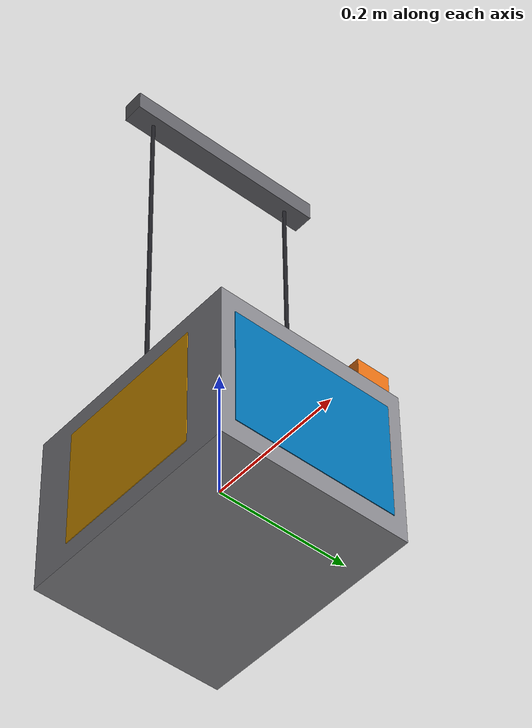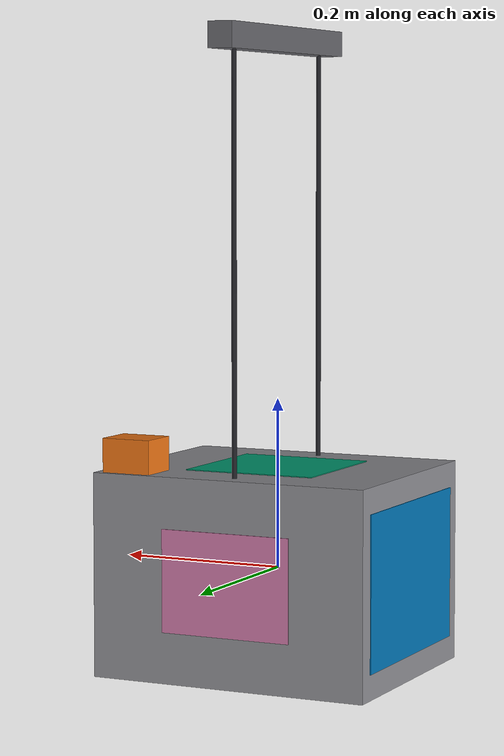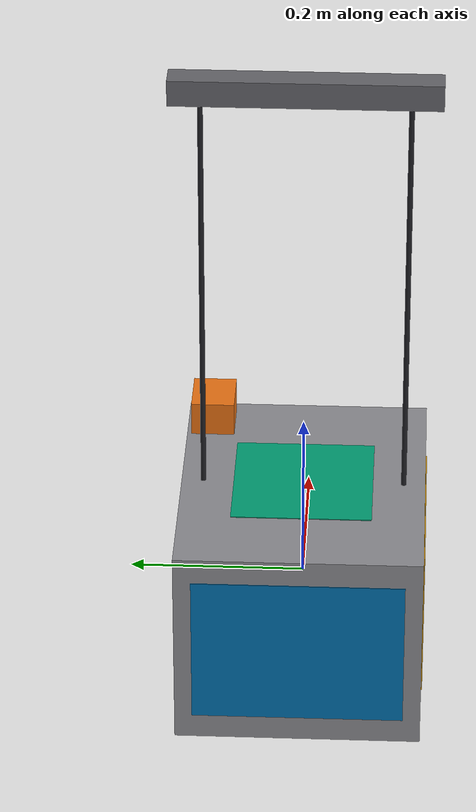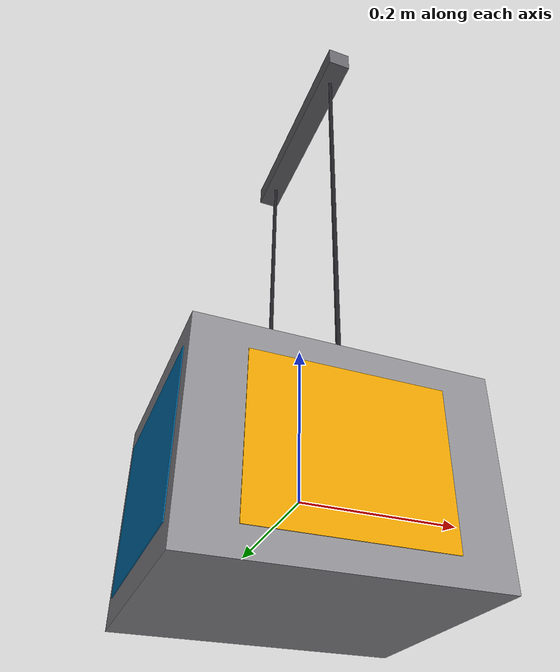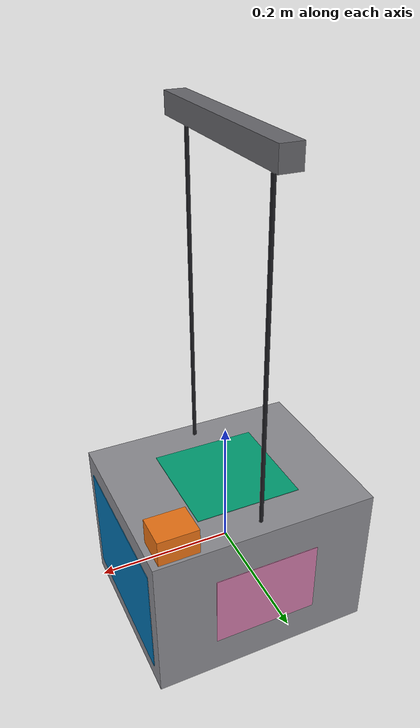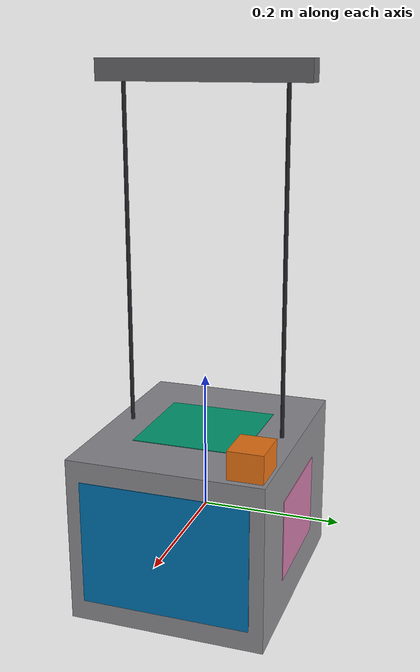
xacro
<?xml version="1.0"?>
<robot name="calibration_target_v1" xmlns:xacro="http://ros.org/wiki/xacro">

  <!-- ===== 基本参数 (V5) ===== -->
  <xacro:property name="body_sx" value="0.34"/>  <!-- X: 前后 -->
  <xacro:property name="body_sy" value="0.28"/>  <!-- Y: 左右 -->
  <xacro:property name="body_sz" value="0.24"/>  <!-- Z: 上下 -->
  <xacro:property name="panel_gap" value="0.001"/>

  <!-- 面板外表面偏移 (V5: PANEL_GAP 替代 panel_thick/2) -->
  <xacro:property name="front_x" value="${body_sx/2 + panel_gap}"/>
  <xacro:property name="back_x"  value="${-body_sx/2 - panel_gap}"/>
  <xacro:property name="left_y"  value="${body_sy/2 + panel_gap}"/>
  <xacro:property name="right_y" value="${-body_sy/2 - panel_gap}"/>
  <xacro:property name="top_z"   value="${body_sz/2 + panel_gap}"/>

  <!-- 吊具参数 (V5) -->
  <xacro:property name="spreader_z" value="0.62"/>
  <xacro:property name="hanger_y" value="0.115"/>
  <xacro:property name="cable_radius" value="0.003"/>
  <xacro:property name="cable_bottom_z" value="0.12"/>
  <xacro:property name="cable_top_z" value="0.605"/>
  <xacro:property name="cable_len" value="${cable_top_z - cable_bottom_z}"/>
  <xacro:property name="cable_mid_z" value="${(cable_top_z + cable_bottom_z) / 2}"/>

  <!-- ===== 材质 ===== -->
  <material name="body_mat_gray">
    <color rgba="0.55 0.55 0.57 1"/>
  </material>
  <material name="block_mat_orange">
    <color rgba="0.92 0.45 0.08 1"/>
  </material>
  <material name="cable_black">
    <color rgba="0.12 0.12 0.14 1"/>
  </material>
  <material name="bar_gray">
    <color rgba="0.40 0.40 0.42 1"/>
  </material>

  <!-- object_frame — 工件坐标系 root (供 object_pose_tf_v31 发布) -->
  <link name="object_frame"/>

  <!-- calibration_target_frame — 目标几何中心 (所有面板的父 frame) -->
  <link name="calibration_target_frame"/>

  <joint name="object_to_calibration_target" type="fixed">
    <parent link="object_frame"/>
    <child link="calibration_target_frame"/>
    <origin xyz="0 0 0" rpy="0 0 0"/>
  </joint>

  <!-- 主体 0.30×0.22×0.18m                                         -->
  <link name="main_body">
    <inertial>
      <mass value="3.0"/>
      <inertia ixx="0.02" ixy="0" ixz="0" iyy="0.018" iyz="0" izz="0.025"/>
    </inertial>
    <visual name="body_vis">
      <origin xyz="0 0 0" rpy="0 0 0"/>
      <geometry><box size="${body_sx} ${body_sy} ${body_sz}"/></geometry>
      <material name="body_mat_gray"/>
    </visual>
    <collision name="body_col">
      <origin xyz="0 0 0" rpy="0 0 0"/>
      <geometry><box size="${body_sx} ${body_sy} ${body_sz}"/></geometry>
    </collision>
  </link>

  <joint name="ct_to_body" type="fixed">
    <parent link="calibration_target_frame"/>
    <child link="main_body"/>
  </joint>

  <!-- 顶部偏置块 (非对称特征)                                      -->
  <xacro:property name="block_sx" value="0.06"/>  <!-- V5: 缩小 -->
  <xacro:property name="block_sy" value="0.05"/>
  <xacro:property name="block_sz" value="0.04"/>
  <xacro:property name="block_off_x" value="0.13"/>
  <xacro:property name="block_off_y" value="0.11"/>

  <link name="top_offset_block">
    <inertial>
      <mass value="0.3"/>
      <inertia ixx="0.0002" ixy="0" ixz="0" iyy="0.00015" iyz="0" izz="0.0002"/>
    </inertial>
    <visual name="block_vis">
      <origin xyz="0 0 0" rpy="0 0 0"/>
      <geometry><box size="${block_sx} ${block_sy} ${block_sz}"/></geometry>
      <material name="block_mat_orange"/>
    </visual>
  </link>

  <joint name="ct_to_block" type="fixed">
    <parent link="calibration_target_frame"/>
    <child link="top_offset_block"/>
    <origin xyz="${block_off_x} ${block_off_y} ${body_sz/2 + block_sz/2}" rpy="0 0 0"/>
  </joint>

  <!-- Front panel: ChArUco 8×6, Markers 100–123                   -->
  <!-- Box: thickness(X) × 0.24(Y) × 0.18(Z), 贴 +X 面              -->
  <link name="front_panel">
    <inertial>
      <mass value="0.05"/>
      <inertia ixx="0.00015" ixy="0" ixz="0" iyy="0.0003" iyz="0" izz="0.0002"/>
    </inertial>
    <visual name="front_panel_vis">
      <origin xyz="0 0 0" rpy="0 0 0"/>
      <geometry><box size="${panel_gap} 0.24 0.18"/></geometry>
    </visual>
  </link>

  <joint name="ct_to_front_panel" type="fixed">
    <parent link="calibration_target_frame"/>
    <child link="front_panel"/>
    <origin xyz="${front_x} 0 0" rpy="0 0 0"/>
  </joint>

  <link name="calibration_target_front_frame"/>
  <joint name="front_panel_to_frame" type="fixed">
    <parent link="front_panel"/>
    <child link="calibration_target_front_frame"/>
  </joint>

  <!-- Left panel: ChArUco 6×5, Markers 200–214                    -->
  <!-- Box: 0.16(X) × thickness(Y) × 0.12(Z), 贴 +Y 面              -->
  <link name="left_panel">
    <inertial>
      <mass value="0.03"/>
      <inertia ixx="0.0001" ixy="0" ixz="0" iyy="0.00015" iyz="0" izz="0.0001"/>
    </inertial>
    <visual name="left_panel_vis">
      <origin xyz="0 0 0" rpy="0 0 0"/>
      <geometry><box size="0.16 ${panel_gap} 0.12"/></geometry>
    </visual>
  </link>

  <joint name="ct_to_left_panel" type="fixed">
    <parent link="calibration_target_frame"/>
    <child link="left_panel"/>
    <origin xyz="0 ${left_y} 0" rpy="0 0 0"/>
  </joint>

  <link name="calibration_target_left_frame"/>
  <joint name="left_panel_to_frame" type="fixed">
    <parent link="left_panel"/>
    <child link="calibration_target_left_frame"/>
  </joint>

  <!-- Right panel: AprilTag 2×2, IDs 4–7                         -->
  <!-- Box: 0.22(X) × thickness(Y) × 0.18(Z), 贴 -Y 面             -->
  <link name="right_panel">
    <inertial>
      <mass value="0.04"/>
      <inertia ixx="0.00015" ixy="0" ixz="0" iyy="0.0002" iyz="0" izz="0.00015"/>
    </inertial>
    <visual name="right_panel_vis">
      <origin xyz="0 0 0" rpy="0 0 0"/>
      <geometry><box size="0.22 ${panel_gap} 0.18"/></geometry>
    </visual>
  </link>

  <joint name="ct_to_right_panel" type="fixed">
    <parent link="calibration_target_frame"/>
    <child link="right_panel"/>
    <origin xyz="0 ${right_y} 0" rpy="0 0 0"/>
  </joint>

  <link name="calibration_target_right_frame"/>
  <joint name="right_panel_to_frame" type="fixed">
    <parent link="right_panel"/>
    <child link="calibration_target_right_frame"/>
  </joint>

  <!-- Top panel: AprilTag, ID 8, 贴 +Z 面                          -->
  <link name="top_panel">
    <inertial>
      <mass value="0.03"/>
      <inertia ixx="0.0001" ixy="0" ixz="0" iyy="0.0001" iyz="0" izz="0.00005"/>
    </inertial>
    <visual name="top_panel_vis">
      <origin xyz="0 0 0" rpy="0 0 0"/>
      <geometry><box size="0.16 0.16 ${panel_gap}"/></geometry>
    </visual>
  </link>

  <joint name="ct_to_top_panel" type="fixed">
    <parent link="calibration_target_frame"/>
    <child link="top_panel"/>
    <origin xyz="0 0 ${top_z}" rpy="0 0 0"/>
  </joint>

  <link name="calibration_target_top_frame"/>
  <joint name="top_panel_to_frame" type="fixed">
    <parent link="top_panel"/>
    <child link="calibration_target_top_frame"/>
  </joint>

  <!-- Back panel: ChArUco 300–323, 后相机覆盖, 贴 -X 面            -->
  <link name="back_panel">
    <inertial>
      <mass value="0.05"/>
      <inertia ixx="0.00015" ixy="0" ixz="0" iyy="0.0003" iyz="0" izz="0.0002"/>
    </inertial>
    <visual name="back_panel_vis">
      <origin xyz="0 0 0" rpy="0 0 0"/>
      <geometry><box size="${panel_gap} 0.24 0.18"/></geometry>
    </visual>
  </link>

  <joint name="ct_to_back_panel" type="fixed">
    <parent link="calibration_target_frame"/>
    <child link="back_panel"/>
    <origin xyz="${back_x} 0 0" rpy="0 0 0"/>
  </joint>

  <link name="calibration_target_back_frame"/>
  <joint name="back_panel_to_frame" type="fixed">
    <parent link="back_panel"/>
    <child link="calibration_target_back_frame"/>
  </joint>

  <!-- 吊索 + 横杆                                                  -->

  <link name="left_cable">
    <inertial>
      <mass value="0.05"/>
      <inertia ixx="0.0001" ixy="0" ixz="0" iyy="0.0001" iyz="0" izz="0.00001"/>
    </inertial>
    <visual name="left_cable_vis">
      <origin xyz="0 ${-hanger_y} ${cable_mid_z}" rpy="0 0 0"/>
      <geometry><cylinder radius="${cable_radius}" length="${cable_len}"/></geometry>
      <material name="cable_black"/>
    </visual>
  </link>
  <joint name="ct_to_left_cable" type="fixed">
    <parent link="calibration_target_frame"/>
    <child link="left_cable"/>
  </joint>

  <link name="right_cable">
    <inertial>
      <mass value="0.05"/>
      <inertia ixx="0.0001" ixy="0" ixz="0" iyy="0.0001" iyz="0" izz="0.00001"/>
    </inertial>
    <visual name="right_cable_vis">
      <origin xyz="0 ${hanger_y} ${cable_mid_z}" rpy="0 0 0"/>
      <geometry><cylinder radius="${cable_radius}" length="${cable_len}"/></geometry>
      <material name="cable_black"/>
    </visual>
  </link>
  <joint name="ct_to_right_cable" type="fixed">
    <parent link="calibration_target_frame"/>
    <child link="right_cable"/>
  </joint>

  <link name="spreader_bar">
    <inertial>
      <mass value="1.0"/>
      <inertia ixx="0.008" ixy="0" ixz="0" iyy="0.002" iyz="0" izz="0.008"/>
    </inertial>
    <visual name="bar_vis">
      <origin xyz="0 0 ${spreader_z}" rpy="0 0 0"/>
      <geometry><box size="0.03 0.30 0.03"/></geometry>
      <material name="bar_gray"/>
    </visual>
    <collision name="bar_col">
      <origin xyz="0 0 ${spreader_z}" rpy="0 0 0"/>
      <geometry><box size="0.03 0.30 0.03"/></geometry>
    </collision>
  </link>
  <joint name="ct_to_spreader" type="fixed">
    <parent link="calibration_target_frame"/>
    <child link="spreader_bar"/>
  </joint>

  <!-- Gazebo 配置                                               -->
  <gazebo><static>true</static></gazebo>

  <gazebo reference="front_panel">
    <material>CR5/Calibration/CharucoFrontV1</material>
  </gazebo>
  <gazebo reference="left_panel">
    <material>CR5/Calibration/CharucoLeftV1</material>
  </gazebo>
  <gazebo reference="right_panel">
    <material>CR5/Calibration/AprilTagRightV1</material>
  </gazebo>
  <gazebo reference="top_panel">
    <material>CR5/Calibration/AprilTagTopV1</material>
  </gazebo>
  <gazebo reference="back_panel">
    <material>CR5/Calibration/CharucoBackV1</material>
  </gazebo>

</robot>
